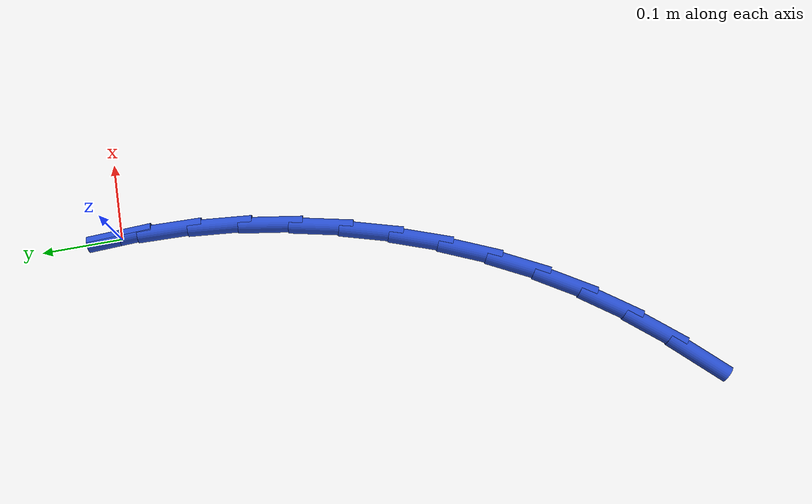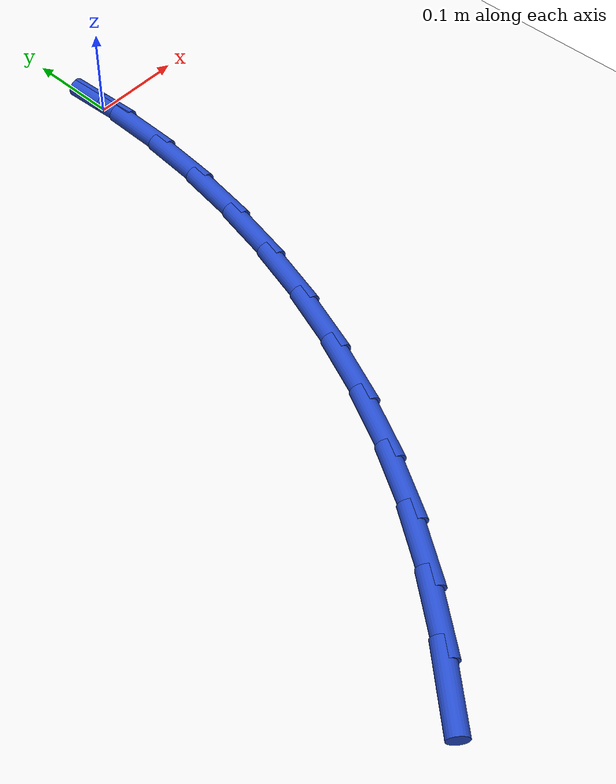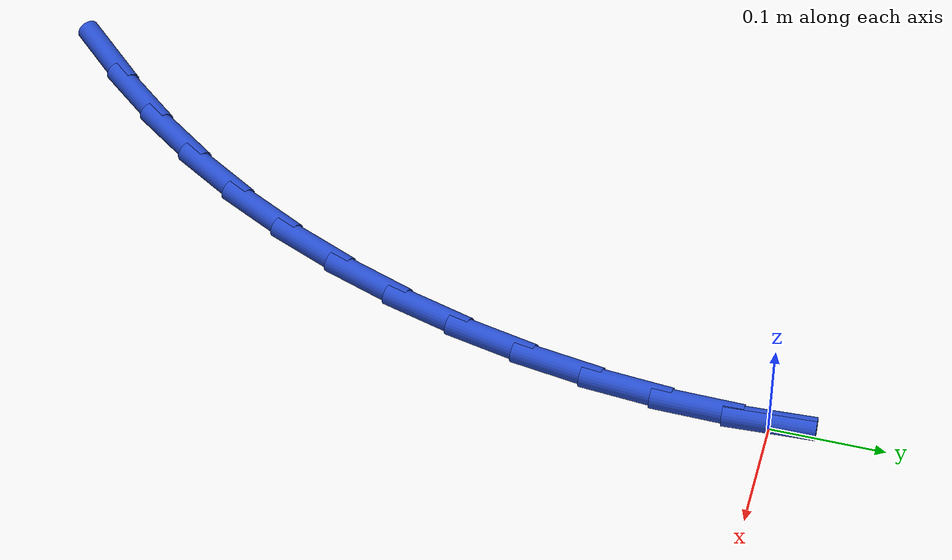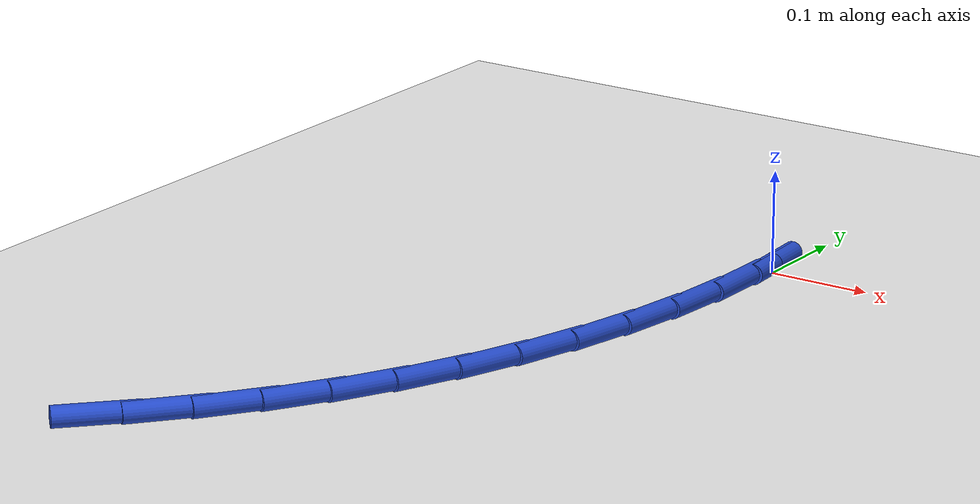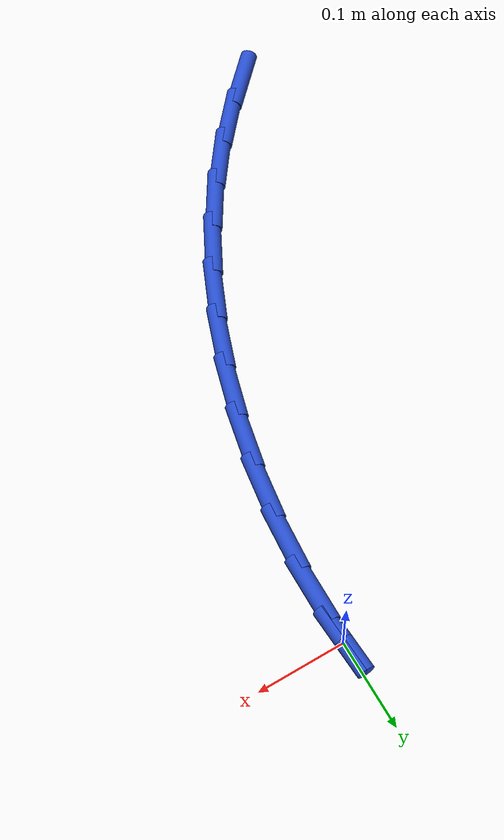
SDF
<sdf version="1.6">
 <world name="default">
  <model name="ground_plane">
   <static>1</static>
   <link name="link">
    <collision name="collision">
     <geometry><plane><normal>0 0 1</normal><size>100 100</size></plane></geometry>
     <surface><friction><ode><mu>100</mu><mu2>50</mu2></ode></friction></surface>
    </collision>
    <visual name="visual">
     <cast_shadows>0</cast_shadows>
     <geometry><plane><normal>0 0 1</normal><size>100 100</size></plane></geometry>
     <material>
      <script><uri>file://media/materials/scripts/gazebo.material</uri><name>Gazebo/WhiteGlow</name></script>
     </material>
    </visual>
   </link>
  </model>
  <model name="line">
   <link name="link_0">
    <pose>1.0755285551056204e-16 -6.938893903907228e-17 0.01 0 1.57 -1.518746031842444</pose>
    <collision name="collision">
     <geometry><cylinder><radius>0.01</radius><length>0.08</length></cylinder></geometry>
    </collision>
    <visual name="visual">
     <material>
      <script><name>Gazebo/Blue</name><uri>file://media/materials/scripts/gazebo.material</uri></script>
     </material>
     <geometry><cylinder><radius>0.01</radius><length>0.08</length></cylinder></geometry>
    </visual>
   </link>
   <link name="link_98">
    <pose>-0.267816180866191 -0.6689432125193594 0.01 0 1.57 0.8056634713821977</pose>
    <collision name="collision">
     <geometry><cylinder><radius>0.01</radius><length>0.08</length></cylinder></geometry>
    </collision>
    <visual name="visual">
     <material>
      <script><name>Gazebo/Blue</name><uri>file://media/materials/scripts/gazebo.material</uri></script>
     </material>
     <geometry><cylinder><radius>0.01</radius><length>0.08</length></cylinder></geometry>
    </visual>
   </link>
   <link name="link_99">
    <pose>-0.22619693483759934 -0.6256019805001876 0.01 0 1.57 0.870773512628161</pose>
    <collision name="collision">
     <geometry><cylinder><radius>0.01</radius><length>0.08</length></cylinder></geometry>
    </collision>
    <visual name="visual">
     <material>
      <script><name>Gazebo/Blue</name><uri>file://media/materials/scripts/gazebo.material</uri></script>
     </material>
     <geometry><cylinder><radius>0.01</radius><length>0.08</length></cylinder></geometry>
    </visual>
   </link>
   <link name="link_100">
    <pose>-0.18752483944788217 -0.5796909769315265 0.01 0 1.57 0.9431569126845868</pose>
    <collision name="collision">
     <geometry><cylinder><radius>0.01</radius><length>0.08</length></cylinder></geometry>
    </collision>
    <visual name="visual">
     <material>
      <script><name>Gazebo/Blue</name><uri>file://media/materials/scripts/gazebo.material</uri></script>
     </material>
     <geometry><cylinder><radius>0.01</radius><length>0.08</length></cylinder></geometry>
    </visual>
   </link>
   <link name="link_101">
    <pose>-0.15208465988857883 -0.5308420262247732 0.01 0 1.57 1.0188784263512283</pose>
    <collision name="collision">
     <geometry><cylinder><radius>0.01</radius><length>0.08</length></cylinder></geometry>
    </collision>
    <visual name="visual">
     <material>
      <script><name>Gazebo/Blue</name><uri>file://media/materials/scripts/gazebo.material</uri></script>
     </material>
     <geometry><cylinder><radius>0.01</radius><length>0.08</length></cylinder></geometry>
    </visual>
   </link>
   <link name="link_102">
    <pose>-0.12010588871181765 -0.47890711960831284 0.01 0 1.57 1.091513141952327</pose>
    <collision name="collision">
     <geometry><cylinder><radius>0.01</radius><length>0.08</length></cylinder></geometry>
    </collision>
    <visual name="visual">
     <material>
      <script><name>Gazebo/Blue</name><uri>file://media/materials/scripts/gazebo.material</uri></script>
     </material>
     <geometry><cylinder><radius>0.01</radius><length>0.08</length></cylinder></geometry>
    </visual>
   </link>
   <link name="link_103">
    <pose>-0.0916931381489791 -0.4242356825387192 0.01 0 1.57 1.1609511154499452</pose>
    <collision name="collision">
     <geometry><cylinder><radius>0.01</radius><length>0.08</length></cylinder></geometry>
    </collision>
    <visual name="visual">
     <material>
      <script><name>Gazebo/Blue</name><uri>file://media/materials/scripts/gazebo.material</uri></script>
     </material>
     <geometry><cylinder><radius>0.01</radius><length>0.08</length></cylinder></geometry>
    </visual>
   </link>
   <link name="link_104">
    <pose>-0.06693387889769423 -0.3672454201307073 0.01 0 1.57 1.227988348145753</pose>
    <collision name="collision">
     <geometry><cylinder><radius>0.01</radius><length>0.08</length></cylinder></geometry>
    </collision>
    <visual name="visual">
     <material>
      <script><name>Gazebo/Blue</name><uri>file://media/materials/scripts/gazebo.material</uri></script>
     </material>
     <geometry><cylinder><radius>0.01</radius><length>0.08</length></cylinder></geometry>
    </visual>
   </link>
   <link name="link_105">
    <pose>-0.04591558165559542 -0.3083540374989952 0.01 0 1.57 1.2934168878484142</pose>
    <collision name="collision">
     <geometry><cylinder><radius>0.01</radius><length>0.08</length></cylinder></geometry>
    </collision>
    <visual name="visual">
     <material>
      <script><name>Gazebo/Blue</name><uri>file://media/materials/scripts/gazebo.material</uri></script>
     </material>
     <geometry><cylinder><radius>0.01</radius><length>0.08</length></cylinder></geometry>
    </visual>
   </link>
   <link name="link_106">
    <pose>-0.028725717120313955 -0.2479792397582982 0.01 0 1.57 1.3580208272203798</pose>
    <collision name="collision">
     <geometry><cylinder><radius>0.01</radius><length>0.08</length></cylinder></geometry>
    </collision>
    <visual name="visual">
     <material>
      <script><name>Gazebo/Blue</name><uri>file://media/materials/scripts/gazebo.material</uri></script>
     </material>
     <geometry><cylinder><radius>0.01</radius><length>0.08</length></cylinder></geometry>
    </visual>
   </link>
   <link name="link_107">
    <pose>-0.015451755989482027 -0.18653873202333413 0.01 0 1.57 1.4225788817341285</pose>
    <collision name="collision">
     <geometry><cylinder><radius>0.01</radius><length>0.08</length></cylinder></geometry>
    </collision>
    <visual name="visual">
     <material>
      <script><name>Gazebo/Blue</name><uri>file://media/materials/scripts/gazebo.material</uri></script>
     </material>
     <geometry><cylinder><radius>0.01</radius><length>0.08</length></cylinder></geometry>
    </visual>
   </link>
   <link name="link_108">
    <pose>-0.006181168960731086 -0.12445021940881815 0.01 0 1.57 1.4878701074533514</pose>
    <collision name="collision">
     <geometry><cylinder><radius>0.01</radius><length>0.08</length></cylinder></geometry>
    </collision>
    <visual name="visual">
     <material>
      <script><name>Gazebo/Blue</name><uri>file://media/materials/scripts/gazebo.material</uri></script>
     </material>
     <geometry><cylinder><radius>0.01</radius><length>0.08</length></cylinder></geometry>
    </visual>
   </link>
   <link name="link_109">
    <pose>-0.0010014267316931502 -0.06213140702946841 0.01 0 1.57 1.5546798395921624</pose>
    <collision name="collision">
     <geometry><cylinder><radius>0.01</radius><length>0.08</length></cylinder></geometry>
    </collision>
    <visual name="visual">
     <material>
      <script><name>Gazebo/Blue</name><uri>file://media/materials/scripts/gazebo.material</uri></script>
     </material>
     <geometry><cylinder><radius>0.01</radius><length>0.08</length></cylinder></geometry>
    </visual>
   </link>
   <link name="link_110">
    <pose>1.249000902703301e-16 -4.163336342344337e-17 0.01 0 1.57 -1.5177896974464182</pose>
    <collision name="collision">
     <geometry><cylinder><radius>0.01</radius><length>0.08</length></cylinder></geometry>
    </collision>
    <visual name="visual">
     <material>
      <script><name>Gazebo/Blue</name><uri>file://media/materials/scripts/gazebo.material</uri></script>
     </material>
     <geometry><cylinder><radius>0.01</radius><length>0.08</length></cylinder></geometry>
    </visual>
   </link>
  </model>
 </world>
</sdf>
